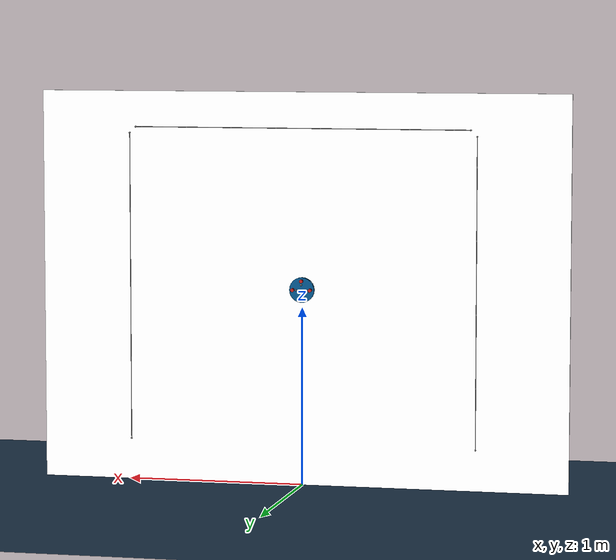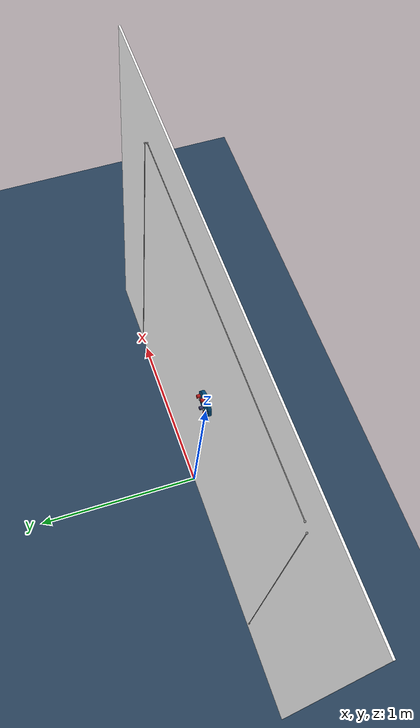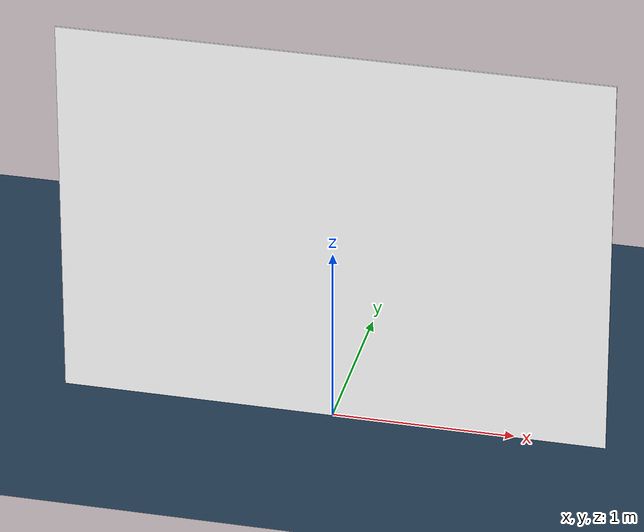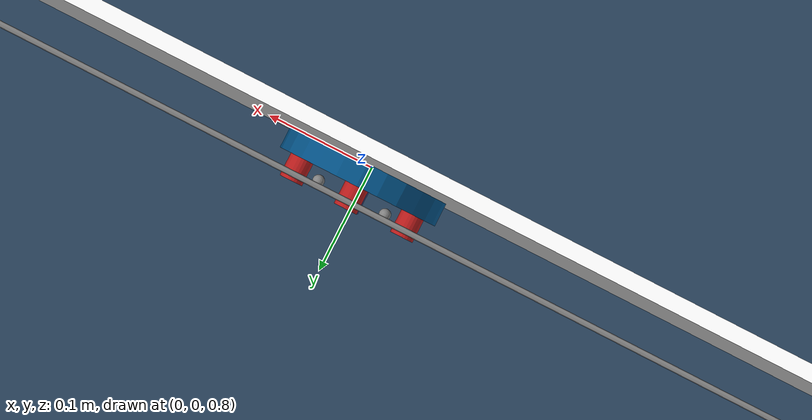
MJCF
<mujoco model="Kamal">
    <option gravity="0 0 -9.81"/>

    <visual>
        <headlight diffuse="0.6 0.6 0.6" ambient="0.3 0.3 0.3" specular="0 0 0"/>
        <rgba haze="0.15 0.25 0.35 1"/>
        <global azimuth="-120" elevation="-20"/>
    </visual>

    <asset>
        <texture type="skybox" builtin="gradient" rgb1="0.3 0.5 0.7" rgb2="0 0 0" width="512" height="3072"/>
        <texture type="2d" name="groundplane" builtin="checker" mark="edge" rgb1="0.2 0.3 0.4" rgb2="0.1 0.2 0.3"
        markrgb="0.8 0.8 0.8" width="300" height="300"/>
        <material name="groundplane" texture="groundplane" texuniform="true" texrepeat="5 5" reflectance="0.1"/>
    </asset>

    <worldbody>

        <light pos="0 0 1.5" dir="0 0 -1" directional="true"/>
        <geom name="floor" size="0 0 0.05" type="plane" material="groundplane"/>

        <body>
            <geom name="board" type="box" size="1.5 0.005 1.1" pos="0 -0.005 1.1" rgba="1 1 1 1"/>
            <site name="r1" pos="-0.985 0.03 1.965"/>
            <site name="r2" pos="-0.985 0.03 0.235"/>
            <site name="u1" pos="0.95 0.03 2"/>
            <site name="u2" pos="-0.95 0.03 2"/>
            <site name="l1" pos="0.985 0.03 1.965"/>
            <site name="l2" pos="0.985 0.03 0.235"/>

        </body>

        <body name="ee" pos="0 0.01 1.1">
            <joint name="slide_x" type="slide" axis="1 0 0"/>
            <joint name="slide_z" type="slide" axis="0 0 1"/>
            <geom type="cylinder" size="0.07 0.01" euler="90 0 0" rgba="0 0.3 0.5 1"/>

            <body name="pulley1" pos="0 0.02 0.05">
                <geom name="p1" type="cylinder" size="0.01 0.01" euler="90 0 0" rgba="0.7 0.1 0.1 1"/>
                <body>
                    <site name="side1" pos="0 0 -0.02"/>
                </body>
            </body>

            <body name="pulley2" pos="0.05 0.02 0">
                <geom name="p2" type="cylinder" size="0.01 0.01" euler="90 0 0" rgba="0.7 0.1 0.1 1"/>
                <body>
                    <site name="side2" pos="-0.02 0 0"/>
                </body>
            </body>

            <body name="pulley3" pos="-0.05 0.02 0">
                <geom name="p3" type="cylinder" size="0.01 0.01" euler="90 0 0" rgba="0.7 0.1 0.1 1"/>
                <body>
                    <site name="side3" pos="0.02 0 0"/>
                </body>
            </body>

            <body name="end" pos="0 0.02 -0.04">
                <geom name="p4" type="cylinder" size="0.01 0.01" euler="90 0 0" rgba="0.2 0.2 0.4 1"/>
                <site name="end_point" pos="0 0 0"/>
            </body>

        </body>

    </worldbody>

    <tendon>
        <spatial name="tendon1" width=".002" damping="0.1" stiffness="1000">
            <site site="u1"/>
            <geom geom="p1" sidesite="side1"/>
            <site site="u2"/>
        </spatial>

        <spatial name="tendon2" width=".002" damping="0.1" stiffness="1000">
            <site site="l1"/>
            <geom geom="p2" sidesite="side2"/>
            <site site="l2"/>
        </spatial>

        <spatial name="tendon3" width=".002" damping="0.1" stiffness="1000">
            <site site="r1"/>
            <geom geom="p3" sidesite="side3"/>
            <site site="r2"/>
        </spatial>
    </tendon>

    <actuator>
        <motor name="Upper Motor" tendon="tendon1" lengthrange="-10 10"/>
        <motor name="Left Motor" tendon="tendon2" lengthrange="-10 10"/>
        <motor name="Right Motor" tendon="tendon3" lengthrange="-10 10"/>
    </actuator>

    <sensor>
        <tendonpos tendon="tendon1"/>
        <tendonpos tendon="tendon2"/>
        <tendonpos tendon="tendon3"/>
    </sensor>

</mujoco>
